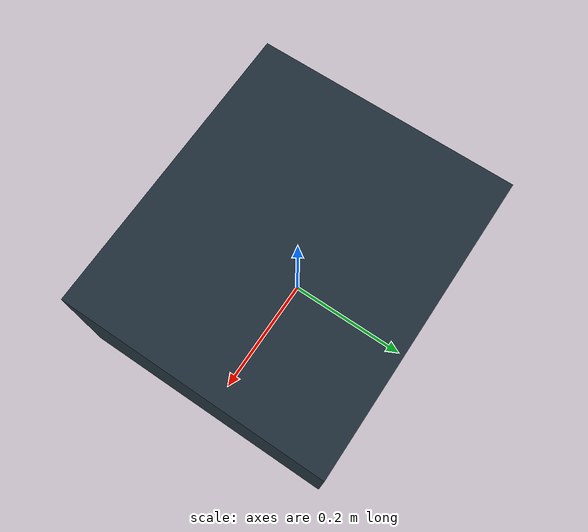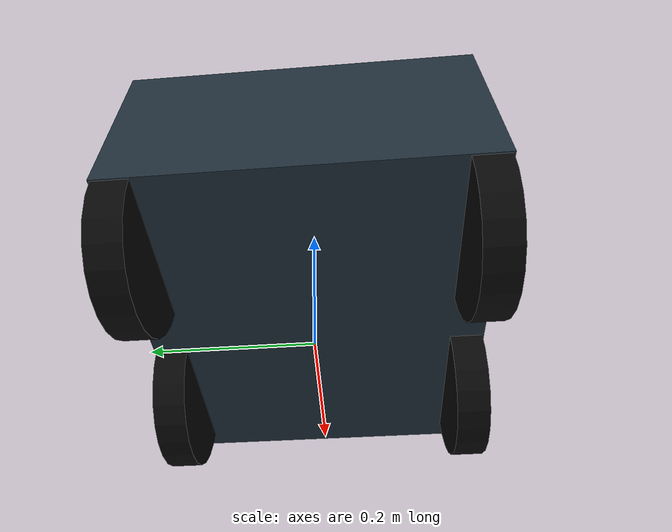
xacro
<?xml version="1.0"?>
<robot xmlns:xacro="http://www.ros.org/wiki/xacro" name="jackal">
  <material name="jackal_body"><color rgba="0.12 0.18 0.22 1"/></material>
  <material name="wheel_black"><color rgba="0.03 0.03 0.03 1"/></material>

  <link name="base_link">
    <visual>
      <origin xyz="0.0125 0 0.14" rpy="0 0 0"/>
      <geometry><box size="0.485 0.420 0.220"/></geometry>
      <material name="jackal_body"/>
    </visual>
  </link>

  <xacro:macro name="wheel" params="name x y">
    <link name="${name}_wheel_link">
      <visual>
        <origin xyz="0 0 0" rpy="1.57079632679 0 0"/>
        <geometry><cylinder radius="0.098" length="0.040"/></geometry>
        <material name="wheel_black"/>
      </visual>
    </link>
    <joint name="${name}_wheel_joint" type="continuous">
      <origin xyz="${x} ${y} 0.0345" rpy="0 0 0"/>
      <parent link="base_link"/><child link="${name}_wheel_link"/>
      <axis xyz="0 1 0"/>
    </joint>
  </xacro:macro>

  <xacro:wheel name="front_left" x="0.131" y="0.187795"/>
  <xacro:wheel name="front_right" x="0.131" y="-0.187795"/>
  <xacro:wheel name="rear_left" x="-0.131" y="0.187795"/>
  <xacro:wheel name="rear_right" x="-0.131" y="-0.187795"/>

  <xacro:macro name="hawk_pair" params="name yaw">
    <link name="${name}_stereo_camera_link"/>
    <link name="${name}_stereo_camera_left_optical"/>
    <link name="${name}_stereo_camera_right_optical"/>
    <joint name="${name}_stereo_mount" type="fixed">
      <parent link="base_link"/><child link="${name}_stereo_camera_link"/>
      <origin xyz="0 0 0.42" rpy="0 0 ${yaw}"/>
    </joint>
    <joint name="${name}_stereo_left_optical_joint" type="fixed">
      <parent link="${name}_stereo_camera_link"/>
      <child link="${name}_stereo_camera_left_optical"/>
      <origin xyz="0 0.075 0" rpy="-1.57079632679 0 -1.57079632679"/>
    </joint>
    <joint name="${name}_stereo_right_optical_joint" type="fixed">
      <parent link="${name}_stereo_camera_link"/>
      <child link="${name}_stereo_camera_right_optical"/>
      <origin xyz="0 -0.075 0" rpy="-1.57079632679 0 -1.57079632679"/>
    </joint>
  </xacro:macro>

  <xacro:hawk_pair name="front" yaw="0"/>
  <xacro:hawk_pair name="left" yaw="1.57079632679"/>
  <xacro:hawk_pair name="right" yaw="-1.57079632679"/>
  <xacro:hawk_pair name="back" yaw="3.14159265359"/>

  <link name="front_stereo_camera_imu"/>
  <joint name="front_stereo_imu_joint" type="fixed">
    <parent link="front_stereo_camera_link"/>
    <child link="front_stereo_camera_imu"/>
    <origin xyz="0 0.075 0" rpy="0 0 0"/>
  </joint>
</robot>
